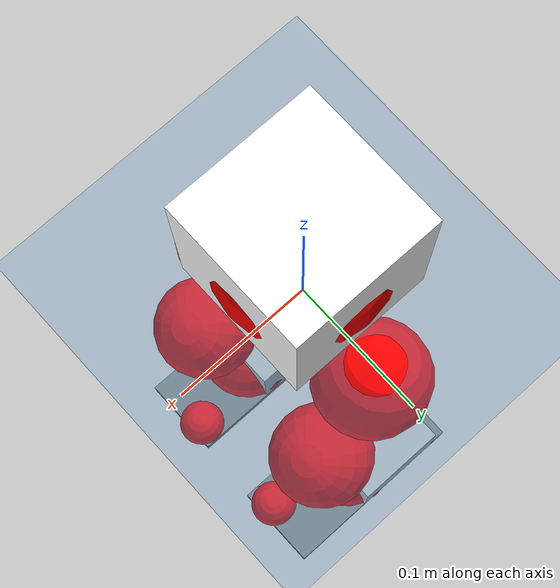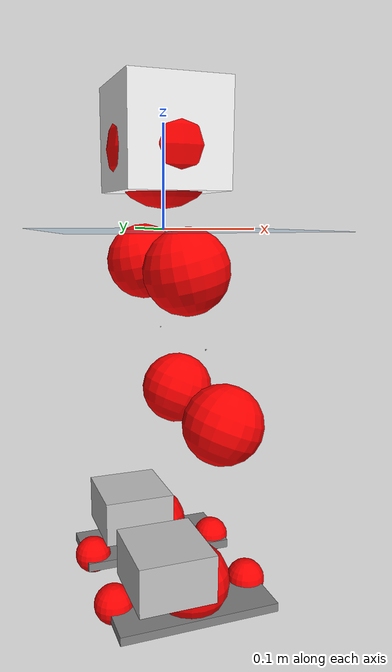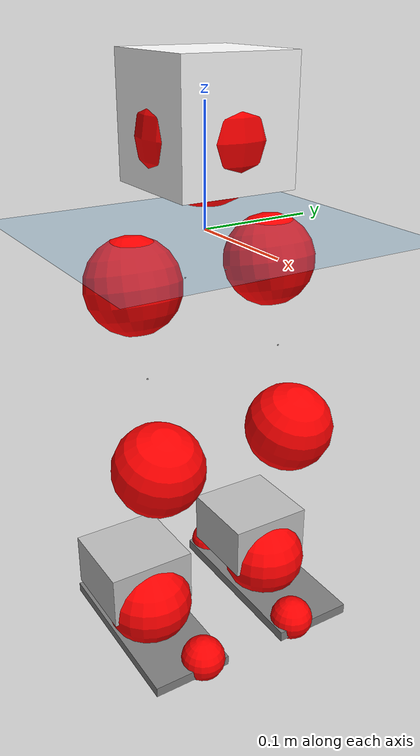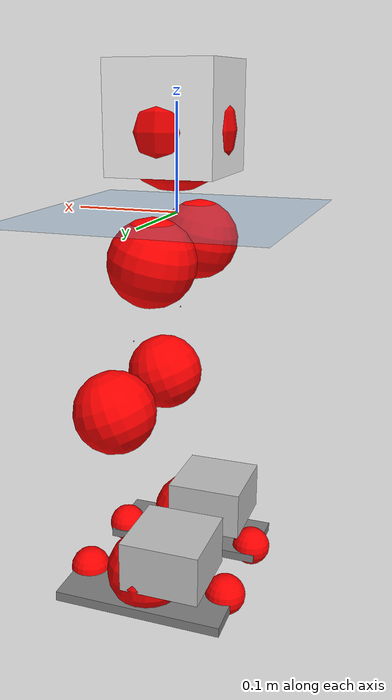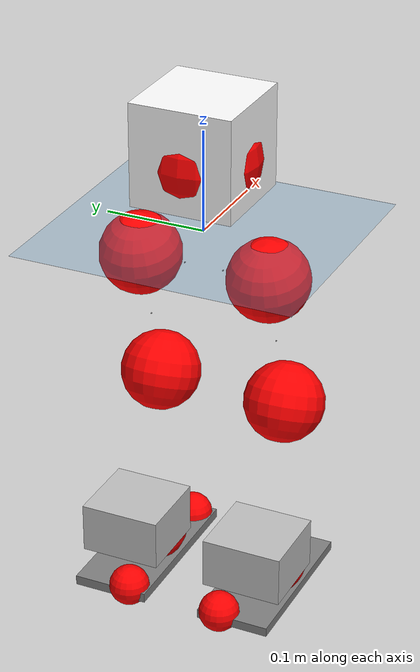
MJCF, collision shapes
<mujoco model="pi_12dof_release_v1">
  <compiler angle="radian" assetdir="assets" balanceinertia="true" inertiafromgeom="false"/>

  <option timestep="0.005" density="1.2" viscosity="2e-05"/>

  <size nkey="1"/>

  <visual>
    <quality shadowsize="8192"/>
    <map shadowclip="0.5"/>
  </visual>

  <default>
    <default class="/">
      <joint armature="0.01" damping="0.01" frictionloss="0.01"/>
      <geom contype="0" conaffinity="0" group="1" solref="-1000 -80"/>
      <site size="0.01 0.005 0.005" group="5"/>
      <general forcelimited="true" biastype="affine" gainprm="20" biasprm="0 -20 -0.5"/>
      <default class="foot">
        <geom size="0.0845 0.036 0.005" type="box" condim="6" group="4" priority="1" friction="0.9 0.2 0.2" solimp="0.015 1 0.005"/>
      </default>
      <default class="reward_collision_sphere">
        <geom group="5" rgba="1 0 0 1"/>
      </default>
    </default>
  </default>

  <asset>
    <texture type="skybox" colorspace="auto" name="//unnamed_texture_0" builtin="gradient" rgb1="0.95 0.95 0.95" rgb2="0.95 0.95 0.95" width="100" height="600"/>
    <texture type="2d" colorspace="auto" name="texplane" builtin="checker" rgb1="0.345 0.575 0.748" rgb2="0.345 0.575 0.748" markrgb="1 1 1" width="512" height="512"/>
    <material name="MatPlane" class="/" texture="texplane" texuniform="true" texrepeat="2 2" specular="0.9"/>
    <mesh name="baselink_1" class="/" file="baselink_1.STL"/>
    <mesh name="r_hip_pitch_link" class="/" file="r_hip_pitch_link.STL"/>
    <mesh name="r_hip_roll_link" class="/" file="r_hip_roll_link.STL"/>
    <mesh name="r_thigh_link" class="/" file="r_thigh_link.STL"/>
    <mesh name="r_calf_link" class="/" file="r_calf_link.STL"/>
    <mesh name="r_ankle_pitch_link" class="/" file="r_ankle_pitch_link.STL"/>
    <mesh name="r_ankle_roll_link" class="/" file="r_ankle_roll_link.STL"/>
    <mesh name="l_hip_pitch_link" class="/" file="l_hip_pitch_link.STL"/>
    <mesh name="l_hip_roll_link" class="/" file="l_hip_roll_link.STL"/>
    <mesh name="l_thigh_link" class="/" file="l_thigh_link.STL"/>
    <mesh name="l_calf_link" class="/" file="l_calf_link.STL"/>
    <mesh name="l_ankle_pitch_link" class="/" file="l_ankle_pitch_link.STL"/>
    <mesh name="l_ankle_roll_link" class="/" file="l_ankle_roll_link.STL"/>
  </asset>

  <worldbody>
    <geom name="floor" class="/" size="100 100 0.125" type="plane" group="0" material="MatPlane"/>
    <light name="toplight_shadow" class="/" pos="0 0 5" dir="0.0990148 0.0990148 -0.990148" type="directional" ambient="0.04 0.04 0.04" diffuse="0.55 0.55 0.55" specular="0.12 0.12 0.12"/>
    <light name="toplight_fill" class="/" pos="0 0 5" dir="0.0990148 0.0990148 -0.990148" type="directional" castshadow="false" ambient="0.04 0.04 0.04" diffuse="0.3 0.3 0.3" specular="0.08 0.08 0.08"/>
    <body name="trunk" pos="0.000521855 0.000150692 -0.00190533" quat="1 -0.000385569 0.000683921 -6.47281e-05">
      <inertial pos="0.00272596 -0.000217728 0.0441915" quat="0.696677 0.0117499 0.00283 0.717284" mass="2.29381" diaginertia="0.0155639 0.00389821 0.00696175"/>
      <joint name="//unnamed_joint_0" type="free"/>
      <geom name="//unnamed_geom_1" class="/" type="mesh" density="0" rgba="1 1 1 1" mesh="baselink_1"/>
      <geom name="//unnamed_geom_2" class="/" size="0.0506268 0.0506268 0.0506268" pos="0 0 0.0882389" type="box" rgba="1 1 1 1"/>
      <geom name="//unnamed_geom_3" class="reward_collision_sphere" size="0.0556895" pos="0 0 0.077209"/>
      <site name="imu" class="/" pos="0.000524672 -0.00282991 -0.00273728" size="0.0101254"/>
      <camera name="track" class="/" pos="0 -1.68282 0" quat="0.707107 0.707107 0 0" mode="trackcom"/>
      <camera name="ego_camera" class="/" pos="0.081991 0 0.198538" quat="-0.5 -0.5 0.5 0.5"/>
      <body name="r_hip_pitch_link" pos="0.000494236 -0.0198853 -0.0357458" quat="0.992198 7.53355e-06 -0.124672 6.90037e-06">
        <inertial pos="5.04143e-05 -0.0471376 -0.00141397" quat="-0.0208847 0.69982 -0.0261454 0.713535" mass="0.387672" diaginertia="0.000171372 4.2012e-05 0.000136802"/>
        <joint name="r_hip_pitch_joint" class="/" pos="0 0 0" axis="-0.00188775 -0.999994 0.00283885" stiffness="0.00210338" range="-1.75354 1.26067" armature="0.0101727" damping="0.0165794" frictionloss="0.0102947"/>
        <geom name="//unnamed_geom_4" class="/" type="mesh" density="0" rgba="0.75294 0.75294 0.75294 1" mesh="r_hip_pitch_link"/>
        <geom name="//unnamed_geom_5" class="/" size="0.000506268 0.000506268 0.000506268" type="box" rgba="0.75294 0.75294 0.75294 1"/>
        <body name="r_hip_roll_link" pos="-0.00100073 -0.0473055 0.000974353" quat="1 -2.74585e-05 -5.02778e-05 -0.0002721">
          <inertial pos="-0.000373512 -0.00022523 -0.0669475" quat="0.706429 -0.0825118 -0.0842725 0.697888" mass="0.396396" diaginertia="0.000514349 0.000115548 0.000204828"/>
          <joint name="r_hip_roll_joint" class="/" pos="0 0 0" axis="-1 0.000419636 0.000296392" range="-0.12231 0.492465" armature="0.00906412" damping="0.00792087" frictionloss="0.00989411"/>
          <geom name="//unnamed_geom_6" class="/" type="mesh" density="0" rgba="0.75294 0.75294 0.75294 1" mesh="r_hip_roll_link"/>
          <geom name="//unnamed_geom_7" class="/" size="0.000506268 0.000506268 0.000506268" type="box" rgba="0.75294 0.75294 0.75294 1"/>
          <geom name="//unnamed_geom_8" class="reward_collision_sphere" size="0.0405015"/>
          <body name="r_thigh_link" pos="0.000940775 -0.000159378 -0.0762393" quat="1 4.79902e-05 -0.000321258 8.01006e-05">
            <inertial pos="-0.00172538 -0.000891585 -0.0518445" quat="0.737237 0.675634 1.12479e-06 -1.45764e-05" mass="0.117205" diaginertia="0.000191962 4.02711e-05 9.4651e-05"/>
            <joint name="r_thigh_joint" class="/" pos="0 0 0" axis="-5.13496e-05 -7.87389e-05 -1" range="-0.284431 0.610685" armature="0.00917835" damping="0.00484147" frictionloss="0.00998048"/>
            <geom name="//unnamed_geom_9" class="/" type="mesh" density="0" rgba="0.75294 0.75294 0.75294 1" mesh="r_thigh_link"/>
            <geom name="//unnamed_geom_10" class="/" size="0.000506268 0.000506268 0.000506268" type="box" rgba="0.75294 0.75294 0.75294 1"/>
            <body name="r_calf_link" pos="-0.000778399 -0.00188252 -0.0782328" quat="0.947551 0.000991776 0.319603 4.93962e-05">
              <inertial pos="0.000696191 -0.000824149 -0.0766613" quat="0.999969 0.00670352 0.000257131 0.00418864" mass="0.873736" diaginertia="0.00556623 0.00149613 0.00028936"/>
              <joint name="r_calf_joint" class="/" pos="0 0 0" axis="0.0023863 -0.999992 -0.0033107" stiffness="0.00128647" range="-1.65218 0.632844" armature="0.0100944" damping="0.00684109" frictionloss="0.01036"/>
              <geom name="//unnamed_geom_11" class="/" type="mesh" density="0" rgba="0.75294 0.75294 0.75294 1" mesh="r_calf_link"/>
              <geom name="//unnamed_geom_12" class="/" size="0.000506268 0.000506268 0.000506268" type="box" rgba="0.75294 0.75294 0.75294 1"/>
              <geom name="//unnamed_geom_13" class="reward_collision_sphere" size="0.0405015"/>
              <body name="r_ankle_pitch_link" pos="0.000625251 0.000919036 -0.15307" quat="0.980008 0.000194914 -0.198959 4.12387e-05">
                <inertial pos="0.00617667 0.0031525 0.000686637" quat="0.00518086 0.706911 -0.0028145 0.707278" mass="0.184046" diaginertia="0.000480404 9.28562e-05 0.000193539"/>
                <joint name="r_ankle_pitch_joint" class="/" pos="0 0 0" axis="0.00113668 -0.999994 0.00325957" stiffness="0.00106041" range="-1.28355 0.503309" armature="0.0106239" damping="0.020403" frictionloss="0.0103102"/>
                <geom name="//unnamed_geom_14" class="/" type="mesh" density="0" rgba="0.75294 0.75294 0.75294 1" mesh="r_ankle_pitch_link"/>
                <geom name="//unnamed_geom_15" class="/" size="0.0394889 0.0405015 0.0253134" type="box" rgba="0.75294 0.75294 0.75294 1"/>
                <body name="r_ankle_roll_link" pos="0.081853 0.00117239 -1.69908e-05" quat="1 -1.32653e-05 5.14347e-05 -2.13887e-05">
                  <inertial pos="-0.0250817 -0.00128705 -0.0155727" quat="0.559947 0.439539 0.430289 0.555083" mass="0.526018" diaginertia="0.00172964 0.000433177 0.00045563"/>
                  <joint name="r_ankle_roll_joint" class="/" pos="0 0 0" axis="-0.999998 -0.00152694 -0.00088341" range="-0.193083 0.141113" armature="0.0095376" damping="0.0119615" frictionloss="0.00930502"/>
                  <geom name="//unnamed_geom_16" class="/" type="mesh" density="0" rgba="0.75294 0.75294 0.75294 1" mesh="r_ankle_roll_link"/>
                  <geom name="//unnamed_geom_17" class="/" type="mesh" rgba="0.75294 0.75294 0.75294 1" mesh="r_ankle_roll_link"/>
                  <geom name="right_foot" class="foot" size="0.0830086 0.0370379 0.00460406" pos="-0.0557539 0 -0.0485314"/>
                  <geom name="//unnamed_geom_19" class="reward_collision_sphere" size="0.0405015" pos="-0.0546607 0 -0.0220597"/>
                  <geom name="//unnamed_geom_20" class="reward_collision_sphere" size="0.0202507" pos="0.0163982 0.0168282 -0.0441194"/>
                  <geom name="//unnamed_geom_21" class="reward_collision_sphere" size="0.0202507" pos="-0.131186 0.0168282 -0.0441194"/>
                  <site name="right_foot" class="foot" pos="-0.0557539 0 -0.0485314" size="0.0101254"/>
                </body>
              </body>
            </body>
          </body>
        </body>
      </body>
      <body name="l_hip_pitch_link" pos="0.000379261 0.0195766 -0.035327" quat="0.992169 0.000182699 -0.124902 0.000105949">
        <inertial pos="0.00201196 0.0436843 -0.00222886" quat="-0.0347436 0.704404 0.0270719 0.708431" mass="0.404757" diaginertia="0.000204175 4.40942e-05 0.000164634"/>
        <joint name="l_hip_pitch_joint" class="/" pos="0 0 0" axis="0.00477667 0.999978 -0.00460687" range="-1.28368 1.76923" armature="0.0101108" damping="7.47069e-05" frictionloss="0.0097288"/>
        <geom name="//unnamed_geom_22" class="/" type="mesh" density="0" rgba="0.75294 0.75294 0.75294 1" mesh="l_hip_pitch_link"/>
        <geom name="//unnamed_geom_23" class="/" size="0.000506268 0.000506268 0.000506268" type="box" rgba="0.75294 0.75294 0.75294 1"/>
        <body name="l_hip_roll_link" pos="-0.000796634 0.045818 0.00195482" quat="1 3.43936e-05 4.49284e-05 -3.75649e-05">
          <inertial pos="0.000686525 -0.000421527 -0.0696061" quat="0.699073 -0.075335 -0.07791 0.70679" mass="0.414339" diaginertia="0.000545207 0.000120965 0.000215496"/>
          <joint name="l_hip_roll_joint" class="/" pos="0 0 0" axis="-1 8.83396e-06 4.61446e-06" range="-0.499528 0.127848" armature="0.0100057" damping="0.00398212" frictionloss="0.0101484"/>
          <geom name="//unnamed_geom_24" class="/" type="mesh" density="0" rgba="0.75294 0.75294 0.75294 1" mesh="l_hip_roll_link"/>
          <geom name="//unnamed_geom_25" class="/" size="0.000506268 0.000506268 0.000506268" type="box" rgba="0.75294 0.75294 0.75294 1"/>
          <geom name="//unnamed_geom_26" class="reward_collision_sphere" size="0.0405015"/>
          <body name="l_thigh_link" pos="4.61809e-05 -0.000753224 -0.0768048" quat="1 -0.000203353 5.70598e-05 0.000122037">
            <inertial pos="-0.0013233 -0.00188204 -0.0546744" quat="0.671571 0.740925 0.000615086 0.00472634" mass="0.116875" diaginertia="0.000194634 4.02759e-05 9.32282e-05"/>
            <joint name="l_thigh_joint" class="/" pos="0 0 0" axis="9.6126e-06 0.000549926 -1" range="-0.598138 0.288545" armature="0.0101854" damping="0.0121181" frictionloss="0.0111445"/>
            <geom name="//unnamed_geom_27" class="/" type="mesh" density="0" rgba="0.75294 0.75294 0.75294 1" mesh="l_thigh_link"/>
            <geom name="//unnamed_geom_28" class="/" size="0.000506268 0.000506268 0.000506268" type="box" rgba="0.75294 0.75294 0.75294 1"/>
            <body name="l_calf_link" pos="0.00181253 0.000499368 -0.0760343" quat="0.9477 -6.58375e-05 0.319161 -8.45948e-05">
              <inertial pos="-1.57762e-05 0.003052 -0.0773725" quat="0.999953 0.00569189 0.00676692 0.00399381" mass="0.84105" diaginertia="0.00574736 0.00150484 0.000288915"/>
              <joint name="l_calf_joint" class="/" pos="0 0 0" axis="0.0013294 0.999997 0.00215788" range="-0.672788 1.68319" armature="0.00994623" damping="0.00822247" frictionloss="0.00999584"/>
              <geom name="//unnamed_geom_29" class="/" type="mesh" density="0" rgba="0.75294 0.75294 0.75294 1" mesh="l_calf_link"/>
              <geom name="//unnamed_geom_30" class="/" size="0.000506268 0.000506268 0.000506268" type="box" rgba="0.75294 0.75294 0.75294 1"/>
              <geom name="//unnamed_geom_31" class="reward_collision_sphere" size="0.0405015"/>
              <body name="l_ankle_pitch_link" pos="0.00158093 -0.000131348 -0.153308" quat="0.980074 -4.97357e-05 -0.198635 -0.000249916">
                <inertial pos="0.00441217 -0.000226099 -0.001714" quat="-0.00212729 0.707423 0.00294926 0.706781" mass="0.179628" diaginertia="0.000491533 9.45936e-05 0.000196818"/>
                <joint name="l_ankle_pitch_joint" class="/" pos="0 0 0" axis="-0.000974048 0.999999 0.000588848" range="-0.503483 1.31145" armature="0.0106536" damping="0" frictionloss="0.00981601"/>
                <geom name="//unnamed_geom_32" class="/" type="mesh" density="0" rgba="0.75294 0.75294 0.75294 1" mesh="l_ankle_pitch_link"/>
                <geom name="//unnamed_geom_33" class="/" size="0.0394889 0.0405015 0.0253134" type="box" rgba="0.75294 0.75294 0.75294 1"/>
                <body name="l_ankle_roll_link" pos="0.080695 0.00101132 -0.00122105" quat="0.999999 -0.00100709 -0.00018543 0.000277453">
                  <inertial pos="-0.0270099 -0.000290412 -0.0155226" quat="0.561951 0.434655 0.428375 0.558374" mass="0.534836" diaginertia="0.00174957 0.000428199 0.0004506"/>
                  <joint name="l_ankle_roll_joint" class="/" pos="0 0 0" axis="-1 0.000230586 -0.000209685" range="-0.145937 0.109533" armature="0.0100184" damping="0.00573347" frictionloss="0.0105787"/>
                  <geom name="//unnamed_geom_34" class="/" type="mesh" density="0" rgba="0.75294 0.75294 0.75294 1" mesh="l_ankle_roll_link"/>
                  <geom name="//unnamed_geom_35" class="/" type="mesh" rgba="0.75294 0.75294 0.75294 1" mesh="l_ankle_roll_link"/>
                  <geom name="left_foot" class="foot" size="0.0851877 0.038159 0.00491744" pos="-0.0557539 0 -0.0485314"/>
                  <geom name="//unnamed_geom_37" class="reward_collision_sphere" size="0.0405015" pos="-0.0546607 0 -0.0220597"/>
                  <geom name="//unnamed_geom_38" class="reward_collision_sphere" size="0.0202507" pos="0.0163982 -0.0168282 -0.0441194"/>
                  <geom name="//unnamed_geom_39" class="reward_collision_sphere" size="0.0202507" pos="-0.131186 -0.0168282 -0.0441194"/>
                  <site name="left_foot" class="foot" pos="-0.0557539 0 -0.0485314" size="0.0101254"/>
                </body>
              </body>
            </body>
          </body>
        </body>
      </body>
    </body>
  </worldbody>

  <contact>
    <pair class="/" geom1="floor" geom2="right_foot" name="//unnamed_contact_1"/>
    <pair class="/" geom1="floor" geom2="left_foot" name="//unnamed_contact_0"/>
  </contact>

  <actuator>
    <general name="r_hip_pitch_joint" class="/" joint="r_hip_pitch_joint" forcerange="-22.1942 22.1942" gainprm="19.2293" biasprm="0 -19.2293 -0.493255"/>
    <general name="r_hip_roll_joint" class="/" joint="r_hip_roll_joint" forcerange="-19.6327 19.6327" gainprm="19.2293" biasprm="0 -19.2293 -0.493255"/>
    <general name="r_thigh_joint" class="/" joint="r_thigh_joint" forcerange="-21.2045 21.2045" gainprm="19.2293" biasprm="0 -19.2293 -0.493255"/>
    <general name="r_calf_joint" class="/" joint="r_calf_joint" forcerange="-22.9636 22.9636" gainprm="19.2293" biasprm="0 -19.2293 -0.493255"/>
    <general name="r_ankle_pitch_joint" class="/" joint="r_ankle_pitch_joint" forcerange="-22.0317 22.0317" gainprm="19.2293" biasprm="0 -19.2293 -0.493255"/>
    <general name="r_ankle_roll_joint" class="/" joint="r_ankle_roll_joint" forcerange="-19.6119 19.6119" gainprm="19.2293" biasprm="0 -19.2293 -0.493255"/>
    <general name="l_hip_pitch_joint" class="/" joint="l_hip_pitch_joint" forcerange="-21.3698 21.3698" gainprm="19.2293" biasprm="0 -19.2293 -0.493255"/>
    <general name="l_hip_roll_joint" class="/" joint="l_hip_roll_joint" forcerange="-21.4251 21.4251" gainprm="19.2293" biasprm="0 -19.2293 -0.493255"/>
    <general name="l_thigh_joint" class="/" joint="l_thigh_joint" forcerange="-20.7497 20.7497" gainprm="19.2293" biasprm="0 -19.2293 -0.493255"/>
    <general name="l_calf_joint" class="/" joint="l_calf_joint" forcerange="-20.9786 20.9786" gainprm="19.2293" biasprm="0 -19.2293 -0.493255"/>
    <general name="l_ankle_pitch_joint" class="/" joint="l_ankle_pitch_joint" forcerange="-20.6538 20.6538" gainprm="19.2293" biasprm="0 -19.2293 -0.493255"/>
    <general name="l_ankle_roll_joint" class="/" joint="l_ankle_roll_joint" forcerange="-21.3701 21.3701" gainprm="19.2293" biasprm="0 -19.2293 -0.493255"/>
  </actuator>

  <sensor>
    <gyro site="imu" name="imu_angular_velocity"/>
    <velocimeter site="imu" name="imu_linear_velocity"/>
    <framelinvel objtype="site" objname="left_foot" name="left_foot_global_linear_velocity"/>
    <framelinvel objtype="site" objname="right_foot" name="right_foot_global_linear_velocity"/>
  </sensor>

  <keyframe>
    <key name="home" qpos="0 0 0.291 1 0 0 0 0.4 0 0 -0.8 0.4 0 -0.4 0 0 0.8 -0.4 0"/>
  </keyframe>
</mujoco>
